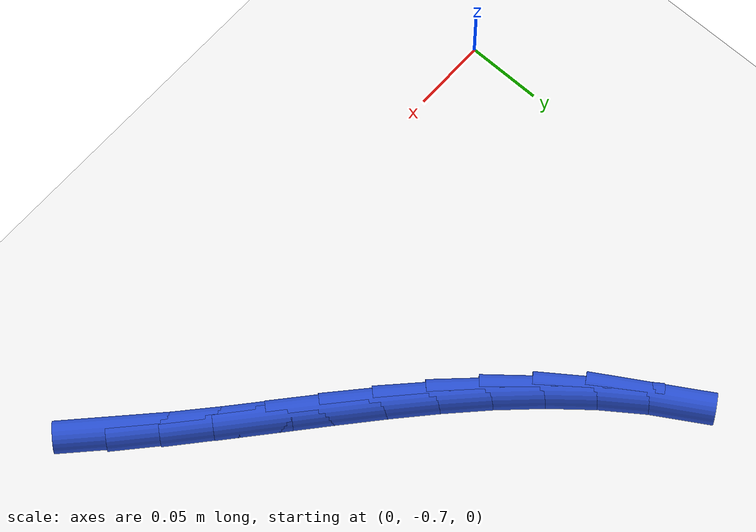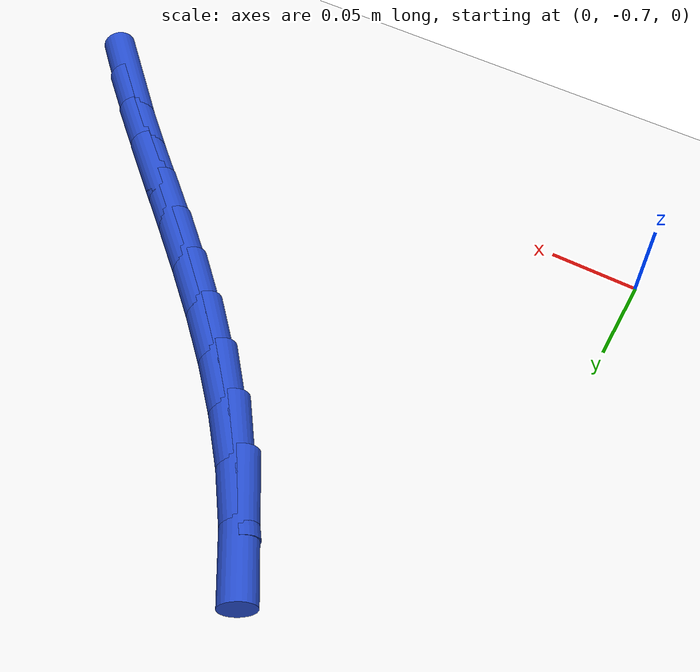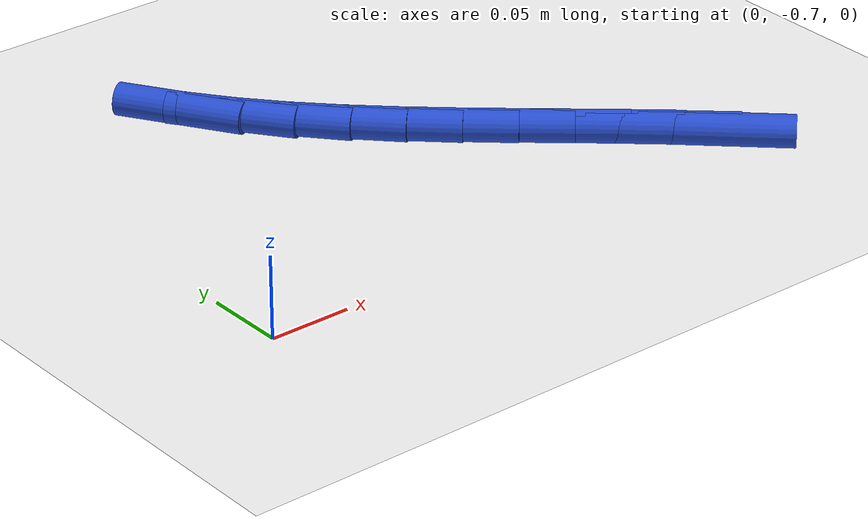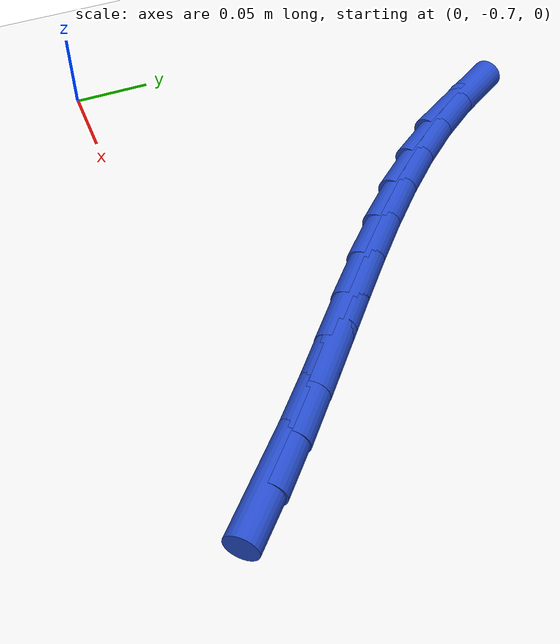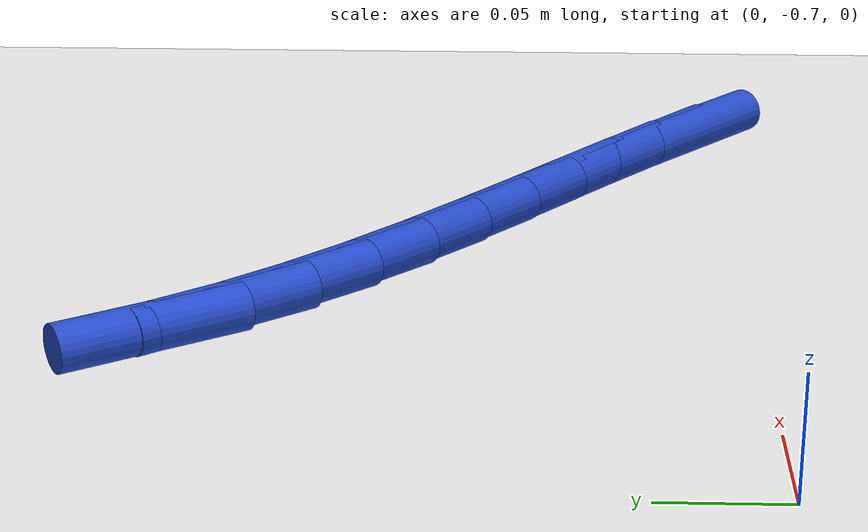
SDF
<sdf version="1.6">
 <world name="default">
  <model name="ground_plane">
   <static>1</static>
   <link name="link">
    <collision name="collision">
     <geometry><plane><normal>0 0 1</normal><size>100 100</size></plane></geometry>
     <surface><friction><ode><mu>100</mu><mu2>50</mu2></ode></friction></surface>
    </collision>
    <visual name="visual">
     <cast_shadows>0</cast_shadows>
     <geometry><plane><normal>0 0 1</normal><size>100 100</size></plane></geometry>
     <material>
      <script><uri>file://media/materials/scripts/gazebo.material</uri><name>Gazebo/WhiteGlow</name></script>
     </material>
    </visual>
   </link>
  </model>
  <model name="line">
   <link name="link_235">
    <pose>0.34185894082237933 -0.6870709715768444 0.01 0 1.57 -0.7616958209791443</pose>
    <collision name="collision">
     <geometry><cylinder><radius>0.01</radius><length>0.08</length></cylinder></geometry>
    </collision>
    <visual name="visual">
     <material>
      <script><name>Gazebo/Blue</name><uri>file://media/materials/scripts/gazebo.material</uri></script>
     </material>
     <geometry><cylinder><radius>0.01</radius><length>0.08</length></cylinder></geometry>
    </visual>
   </link>
   <link name="link_236">
    <pose>0.3188983440709531 -0.6651738079748408 0.01 0 1.57 -0.7321106502370819</pose>
    <collision name="collision">
     <geometry><cylinder><radius>0.01</radius><length>0.08</length></cylinder></geometry>
    </collision>
    <visual name="visual">
     <material>
      <script><name>Gazebo/Blue</name><uri>file://media/materials/scripts/gazebo.material</uri></script>
     </material>
     <geometry><cylinder><radius>0.01</radius><length>0.08</length></cylinder></geometry>
    </visual>
   </link>
   <link name="link_237">
    <pose>0.2950356571763839 -0.6437277967897422 0.01 0 1.57 -0.7152062295022235</pose>
    <collision name="collision">
     <geometry><cylinder><radius>0.01</radius><length>0.08</length></cylinder></geometry>
    </collision>
    <visual name="visual">
     <material>
      <script><name>Gazebo/Blue</name><uri>file://media/materials/scripts/gazebo.material</uri></script>
     </material>
     <geometry><cylinder><radius>0.01</radius><length>0.08</length></cylinder></geometry>
    </visual>
   </link>
   <link name="link_238">
    <pose>0.27061415742630207 -0.6225147454103027 0.01 0 1.57 -0.7105144039253833</pose>
    <collision name="collision">
     <geometry><cylinder><radius>0.01</radius><length>0.08</length></cylinder></geometry>
    </collision>
    <visual name="visual">
     <material>
      <script><name>Gazebo/Blue</name><uri>file://media/materials/scripts/gazebo.material</uri></script>
     </material>
     <geometry><cylinder><radius>0.01</radius><length>0.08</length></cylinder></geometry>
    </visual>
   </link>
   <link name="link_239">
    <pose>0.24597712210833841 -0.6013164612252772 0.01 0 1.57 -0.7178141217579572</pose>
    <collision name="collision">
     <geometry><cylinder><radius>0.01</radius><length>0.08</length></cylinder></geometry>
    </collision>
    <visual name="visual">
     <material>
      <script><name>Gazebo/Blue</name><uri>file://media/materials/scripts/gazebo.material</uri></script>
     </material>
     <geometry><cylinder><radius>0.01</radius><length>0.08</length></cylinder></geometry>
    </visual>
   </link>
   <link name="link_240">
    <pose>0.22146782851012362 -0.5799147516234197 0.01 0 1.57 -0.7371393343855104</pose>
    <collision name="collision">
     <geometry><cylinder><radius>0.01</radius><length>0.08</length></cylinder></geometry>
    </collision>
    <visual name="visual">
     <material>
      <script><name>Gazebo/Blue</name><uri>file://media/materials/scripts/gazebo.material</uri></script>
     </material>
     <geometry><cylinder><radius>0.01</radius><length>0.08</length></cylinder></geometry>
    </visual>
   </link>
   <link name="link_241">
    <pose>0.1974295539192886 -0.5580914239934853 0.01 0 1.57 -0.7687464295937583</pose>
    <collision name="collision">
     <geometry><cylinder><radius>0.01</radius><length>0.08</length></cylinder></geometry>
    </collision>
    <visual name="visual">
     <material>
      <script><name>Gazebo/Blue</name><uri>file://media/materials/scripts/gazebo.material</uri></script>
     </material>
     <geometry><cylinder><radius>0.01</radius><length>0.08</length></cylinder></geometry>
    </visual>
   </link>
   <link name="link_242">
    <pose>0.1742055756234641 -0.5356282857242287 0.01 0 1.57 -0.8130360820706735</pose>
    <collision name="collision">
     <geometry><cylinder><radius>0.01</radius><length>0.08</length></cylinder></geometry>
    </collision>
    <visual name="visual">
     <material>
      <script><name>Gazebo/Blue</name><uri>file://media/materials/scripts/gazebo.material</uri></script>
     </material>
     <geometry><cylinder><radius>0.01</radius><length>0.08</length></cylinder></geometry>
    </visual>
   </link>
   <link name="link_243">
    <pose>0.15213917091028095 -0.5123071442044046 0.01 0 1.57 -0.870413770317646</pose>
    <collision name="collision">
     <geometry><cylinder><radius>0.01</radius><length>0.08</length></cylinder></geometry>
    </collision>
    <visual name="visual">
     <material>
      <script><name>Gazebo/Blue</name><uri>file://media/materials/scripts/gazebo.material</uri></script>
     </material>
     <geometry><cylinder><radius>0.01</radius><length>0.08</length></cylinder></geometry>
    </visual>
   </link>
   <link name="link_244">
    <pose>0.13157361706736995 -0.4879098068227673 0.01 0 1.57 -0.9410675901111929</pose>
    <collision name="collision">
     <geometry><cylinder><radius>0.01</radius><length>0.08</length></cylinder></geometry>
    </collision>
    <visual name="visual">
     <material>
      <script><name>Gazebo/Blue</name><uri>file://media/materials/scripts/gazebo.material</uri></script>
     </material>
     <geometry><cylinder><radius>0.01</radius><length>0.08</length></cylinder></geometry>
    </visual>
   </link>
   <link name="link_245">
    <pose>0.11285211851035465 -0.4622181429612617 0.01 0 1.57 -1.0201508599484606</pose>
    <collision name="collision">
     <geometry><cylinder><radius>0.01</radius><length>0.08</length></cylinder></geometry>
    </collision>
    <visual name="visual">
     <material>
      <script><name>Gazebo/Blue</name><uri>file://media/materials/scripts/gazebo.material</uri></script>
     </material>
     <geometry><cylinder><radius>0.01</radius><length>0.08</length></cylinder></geometry>
    </visual>
   </link>
  </model>
 </world>
</sdf>
